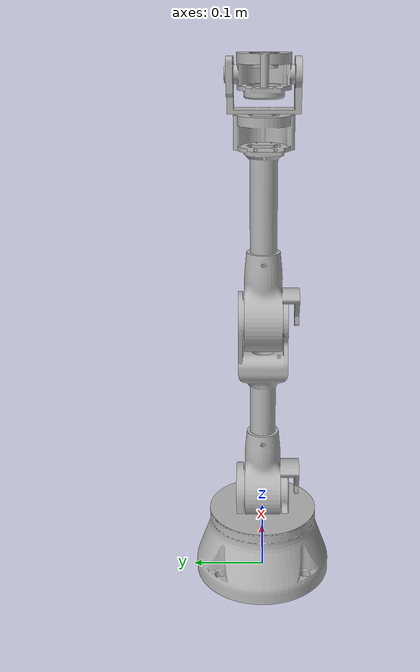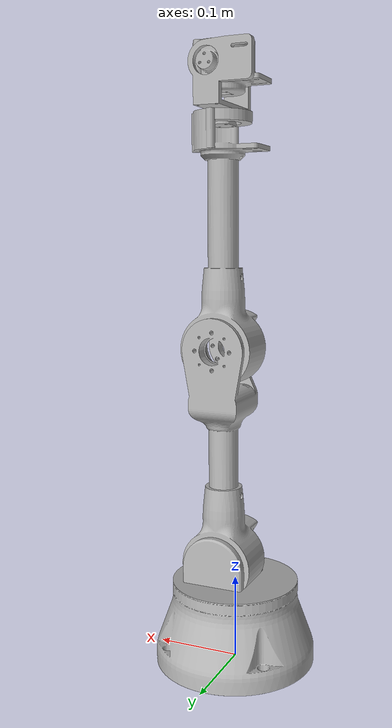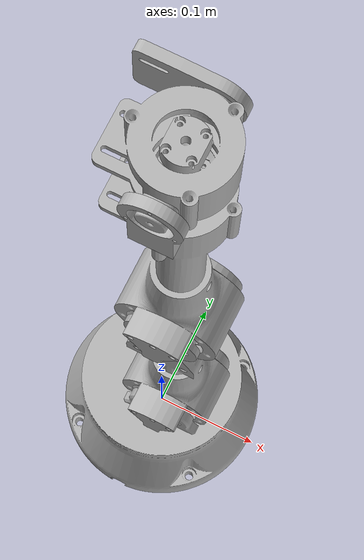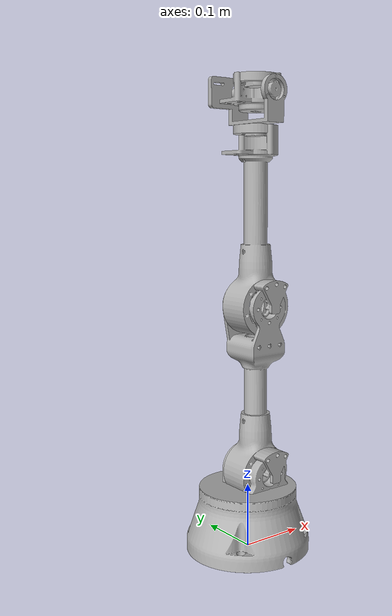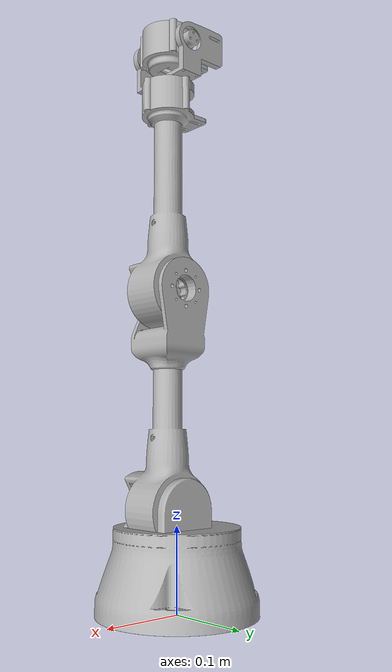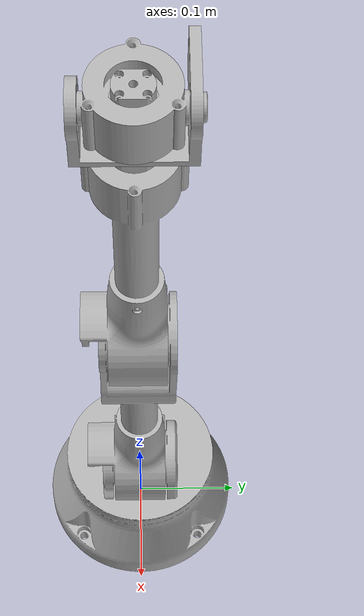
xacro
<?xml version="1.0" ?>
<robot name="ajgar" xmlns:xacro="http://www.ros.org/wiki/xacro">

<xacro:include filename="$(find ajgar)/urdf/materials.xacro" />
<xacro:include filename="$(find ajgar)/urdf/ajgar_URDF.trans" />
<xacro:include filename="$(find ajgar)/urdf/ajgar_URDF.gazebo" />

<link name="world"/>

<link name="base_link">
  <inertial>
    <origin xyz="-0.00865082588772432 1.8113911902102217e-07 0.032368373908884494" rpy="0 0 0"/>
    <mass value="9.059758934586307"/>
    <inertia ixx="0.021583" iyy="0.026795" izz="0.042202" ixy="-0.0" iyz="-0.0" ixz="0.000269"/>
  </inertial>
  <visual>
    <origin xyz="0 0 0" rpy="0 0 0"/>
    <geometry>
      <mesh filename="package://ajgar/meshes/base_link.stl" scale="0.001 0.001 0.001"/>
    </geometry>
    <material name="silver"/>
  </visual>
  <collision>
    <origin xyz="0 0 0" rpy="0 0 0"/>
    <geometry>
      <mesh filename="package://ajgar/meshes/base_link.stl" scale="0.001 0.001 0.001"/>
    </geometry>
  </collision>
</link>

<link name="base_top">
  <inertial>
    <origin xyz="1.279003402099646e-05 -0.0022856514871783416 0.03289309768621855" rpy="0 0 0"/>
    <mass value="1.4850383611977547"/>
    <inertia ixx="0.002124" iyy="0.00176" izz="0.001747" ixy="-0.0" iyz="0.000118" ixz="0.0"/>
  </inertial>
  <visual>
    <origin xyz="0.015013 -0.0 -0.06" rpy="0 0 0"/>
    <geometry>
      <mesh filename="package://ajgar/meshes/base_top.stl" scale="0.001 0.001 0.001"/>
    </geometry>
    <material name="silver"/>
  </visual>
  <collision>
    <origin xyz="0.015013 -0.0 -0.06" rpy="0 0 0"/>
    <geometry>
      <mesh filename="package://ajgar/meshes/base_top.stl" scale="0.001 0.001 0.001"/>
    </geometry>
  </collision>
</link>

<link name="shoulder">
  <inertial>
    <origin xyz="1.2461762721963782e-06 0.025783530669485587 0.11928257744286477" rpy="0 0 0"/>
    <mass value="2.8383656665985857"/>
    <inertia ixx="0.03026" iyy="0.030184" izz="0.00245" ixy="-0.0" iyz="0.000773" ixz="0.0"/>
  </inertial>
  <visual>
    <origin xyz="0.015013 0.025 -0.119368" rpy="0 0 0"/>
    <geometry>
      <mesh filename="package://ajgar/meshes/shoulder.stl" scale="0.001 0.001 0.001"/>
    </geometry>
    <material name="silver"/>
  </visual>
  <collision>
    <origin xyz="0.015013 0.025 -0.119368" rpy="0 0 0"/>
    <geometry>
      <mesh filename="package://ajgar/meshes/shoulder.stl" scale="0.001 0.001 0.001"/>
    </geometry>
  </collision>
</link>

<link name="elbow">
  <inertial>
    <origin xyz="-0.0003292153850686253 0.026723336517713626 0.10654902767889785" rpy="0 0 0"/>
    <mass value="2.4072821039747727"/>
    <inertia ixx="0.026455" iyy="0.026758" izz="0.001672" ixy="-4e-06" iyz="0.000315" ixz="0.000123"/>
  </inertial>
  <visual>
    <origin xyz="0.015013 0.025 -0.377365" rpy="0 0 0"/>
    <geometry>
      <mesh filename="package://ajgar/meshes/elbow.stl" scale="0.001 0.001 0.001"/>
    </geometry>
    <material name="silver"/>
  </visual>
  <collision>
    <origin xyz="0.015013 0.025 -0.377365" rpy="0 0 0"/>
    <geometry>
      <mesh filename="package://ajgar/meshes/elbow.stl" scale="0.001 0.001 0.001"/>
    </geometry>
  </collision>
</link>

<link name="wrist">
  <inertial>
    <origin xyz="0.00920373509392226 -0.01118771679377522 0.025837849583827288" rpy="0 0 0"/>
    <mass value="0.34678950211541076"/>
    <inertia ixx="0.000595" iyy="0.000274" izz="0.000554" ixy="9.5e-05" iyz="7.4e-05" ixz="-6e-05"/>
  </inertial>
  <visual>
    <origin xyz="0.015013 -0.0 -0.644865" rpy="0 0 0"/>
    <geometry>
      <mesh filename="package://ajgar/meshes/wrist.stl" scale="0.001 0.001 0.001"/>
    </geometry>
    <material name="silver"/>
  </visual>
  <collision>
    <origin xyz="0.015013 -0.0 -0.644865" rpy="0 0 0"/>
    <geometry>
      <mesh filename="package://ajgar/meshes/wrist.stl" scale="0.001 0.001 0.001"/>
    </geometry>
  </collision>
</link>

<link name="suction">
  <inertial>
    <origin xyz="-8.479527444330004e-05 0.03652030172582285 8.898889773256702e-05" rpy="0 0 0"/>
    <mass value="0.6053245769138885"/>
    <inertia ixx="0.000476" iyy="0.000398" izz="0.000554" ixy="0.0" iyz="-0.0" ixz="1.7e-05"/>
  </inertial>
  <visual>
    <origin xyz="0.015013 0.037 -0.689865" rpy="0 0 0"/>
    <geometry>
      <mesh filename="package://ajgar/meshes/suction.stl" scale="0.001 0.001 0.001"/>
    </geometry>
    <material name="silver"/>
  </visual>
  <collision>
    <origin xyz="0.015013 0.037 -0.689865" rpy="0 0 0"/>
    <geometry>
      <mesh filename="package://ajgar/meshes/suction.stl" scale="0.001 0.001 0.001"/>
    </geometry>
  </collision>
</link>

<link name="end">
  <inertial>
    <origin xyz="-9.118561992635388e-08 3.576502294322381e-10 -0.00900061967229826" rpy="0 0 0"/>
    <mass value="0.07630173554088619"/>
    <inertia ixx="7e-06" iyy="5e-06" izz="8e-06" ixy="0.0" iyz="-0.0" ixz="0.0"/>
  </inertial>
  <visual>
    <origin xyz="0.015013 -0.0 -0.714365" rpy="0 0 0"/>
    <geometry>
      <mesh filename="package://ajgar/meshes/end.stl" scale="0.001 0.001 0.001"/>
    </geometry>
    <material name="silver"/>
  </visual>
  <collision>
    <origin xyz="0.015013 -0.0 -0.714365" rpy="0 0 0"/>
    <geometry>
      <mesh filename="package://ajgar/meshes/end.stl" scale="0.001 0.001 0.001"/>
    </geometry>
  </collision>
</link>

<joint name="world_joint  " type="fixed">
  <parent link="world" />
  <child link="base_link" />
  <origin rpy="0 0 3.142" xyz="0.0 0.0 0.0" />
</joint>

<joint name="base_joint" type="revolute">
  <origin xyz="-0.015013 0.0 0.06" rpy="0 0 0"/>
  <parent link="base_link"/>
  <child link="base_top"/>
  <axis xyz="0.0 0.0 1.0"/>
  <limit upper="2.879793" lower="-2.879793" effort="100" velocity="100" />
</joint>

<joint name="shoulder_joint" type="revolute">
  <origin xyz="0.0 -0.025 0.059368" rpy="0 0 0"/>
  <parent link="base_top"/>
  <child link="shoulder"/>
  <axis xyz="0.0 -1.0 0.0"/>
  <limit upper="1.57" lower="-1.57" effort="100" velocity="100" />
</joint>

<joint name="arm_joint" type="revolute">
  <origin xyz="0.0 0.0 0.257997" rpy="0 0 0"/>
  <parent link="shoulder"/>
  <child link="elbow"/>
  <axis xyz="0.0 -1.0 -0.0"/>
  <limit upper="1.57" lower="-1.57" effort="100" velocity="100" />
</joint>

<joint name="forearm_joint" type="revolute">
  <origin xyz="0.0 0.025 0.2675" rpy="0 0 0"/>
  <parent link="elbow"/>
  <child link="wrist"/>
  <axis xyz="-0.0 0.0 1.0"/>
  <limit upper="2.879793" lower="-2.879793" effort="100" velocity="100" />
</joint>

<joint name="end_joint" type="revolute">
  <origin xyz="0.0 -0.037 0.045" rpy="0 0 0"/>
  <parent link="wrist"/>
  <child link="suction"/>
  <axis xyz="-0.0 1.0 -0.0"/>
  <limit upper="2.879793" lower="-2.879793" effort="100" velocity="100" />
</joint>

<joint name="suction_joint" type="revolute">
  <origin xyz="0.0 0.037 0.0245" rpy="0 0 0"/>
  <parent link="suction"/>
  <child link="end"/>
  <axis xyz="-0.0 -0.0 -1.0"/>
  <limit upper="2.879793" lower="-2.879793" effort="100" velocity="100" />
</joint>

</robot>

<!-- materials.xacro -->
<robot name="ajgar" xmlns:xacro="http://www.ros.org/wiki/xacro" >

<material name="silver">
  <color rgba="0.700 0.700 0.700 1.000"/>
</material>

</robot>

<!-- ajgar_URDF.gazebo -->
<robot name="ajgar" xmlns:xacro="http://www.ros.org/wiki/xacro" >

<xacro:property name="body_color" value="Gazebo/Silver" />

<gazebo>
  <plugin name="control" filename="libgazebo_ros_control.so"/>
</gazebo>
<gazebo reference="base_link">
  <material>${body_color}</material>
  <mu1>0.2</mu1>
  <mu2>0.2</mu2>
  <selfCollide>true</selfCollide>
  <gravity>true</gravity>
</gazebo>

<gazebo reference="base_top">
  <material>${body_color}</material>
  <mu1>0.2</mu1>
  <mu2>0.2</mu2>
  <selfCollide>true</selfCollide>
</gazebo>

<gazebo reference="shoulder">
  <material>${body_color}</material>
  <mu1>0.2</mu1>
  <mu2>0.2</mu2>
  <selfCollide>true</selfCollide>
</gazebo>

<gazebo reference="elbow">
  <material>${body_color}</material>
  <mu1>0.2</mu1>
  <mu2>0.2</mu2>
  <selfCollide>true</selfCollide>
</gazebo>

<gazebo reference="wrist">
  <material>${body_color}</material>
  <mu1>0.2</mu1>
  <mu2>0.2</mu2>
  <selfCollide>true</selfCollide>
</gazebo>

<gazebo reference="suction">
  <material>${body_color}</material>
  <mu1>0.2</mu1>
  <mu2>0.2</mu2>
  <selfCollide>true</selfCollide>
</gazebo>

<gazebo reference="end">
  <material>${body_color}</material>
  <mu1>0.2</mu1>
  <mu2>0.2</mu2>
  <selfCollide>true</selfCollide>
</gazebo>

</robot>
